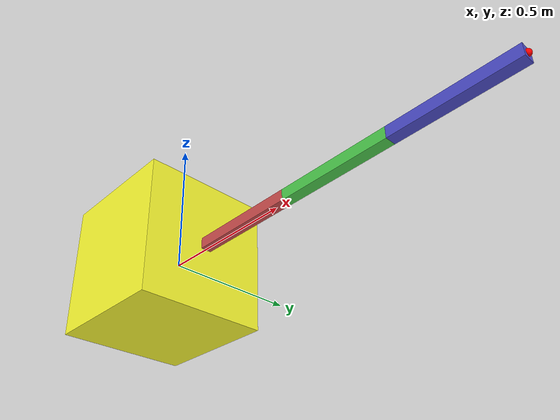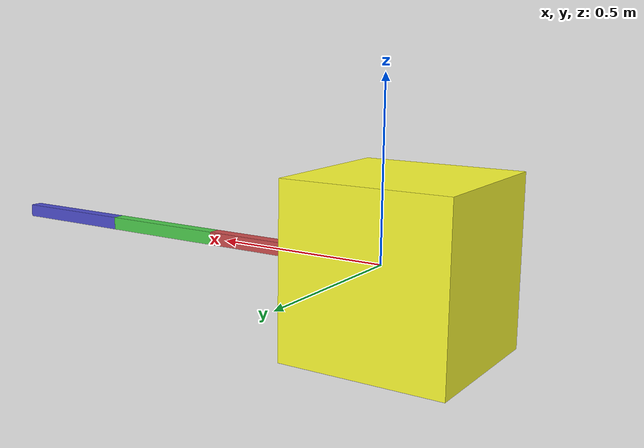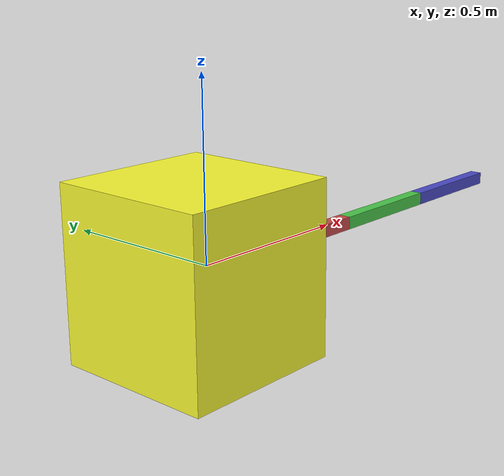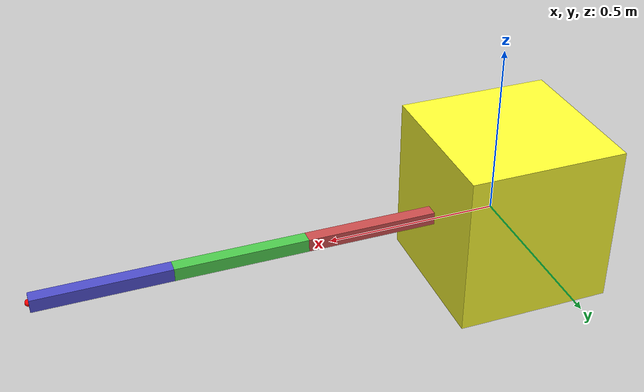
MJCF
<?xml version="1.0"?>
<mujoco model="planar_ffsms_com">
  <compiler angle="radian" inertiafromgeom="true" />
  <!-- option integrator="RK4" timestep="0.002" gravity="0 0 0" /-->
  <option timestep="0.002" gravity="0 0 0" integrator="RK4" />

  <default>
    <geom conaffinity="1" contype="1" friction="0.0 0.0 0.0" density="1000"/>
    <joint limited="false"/>
  </default>

  <worldbody>
      <!-- Large plane behind the model for background -->
    <body name="bg_plane" pos="0 0 -5">
        <geom type="plane" size="10 10 0.1" rgba="0.95 0.95 0.95 1"/>
    </body>
  <!-- Overhead directional light -->
    <light diffuse="0.1 0.1 0.1" ambient="0.1 0.1 0.1"
           pos="0 0 50" dir="0 0 -1"/>

    <!--body name="base" pos="-0.05735208 0 0"-->
    <body name="base" pos="-0.0522 -0.0193 0">
      <!-- Planar floating base joints (restrict motion to plane: tx, ty, yaw) -->
      <joint name="base_tx" type="slide" axis="1 0 0" />
      <joint name="base_ty" type="slide" axis="0 1 0" />
      <joint name="base_yaw" type="hinge" axis="0 0 1" />

      <!-- Base geometry: box sized to lb/2 in x and y half-sizes -->
      <geom name="base_geom" type="box" pos="0 0 0" size="0.232 0.232 0.2415" mass="100.015" rgba="1 1 0.2 1"/>

      <!-- Mounting point B_M_b is at +lb/2 along base x in base frame -->
      <body name="mount_point" pos="0.232 0 0">
        <!-- Joint 1: hinge about z (rotation q1) -->
        <joint name="joint1" type="hinge" axis="0 0 1" pos="0 0 0" damping="0.3" />
        <!-- Link1: capsule from joint1 origin to l1 along +x -->
        <body name="link1" pos="0 0 0">
          <geom name="link1_geom" type="box" size="0.19 0.019 0.019" pos="0.19 0 0" mass="1.2" rgba="0.8 0.3 0.3 1"/>
          <!-- joint2 located at the end of link1 (x = l1) -->
          <body name="joint2_mount" pos="0.38 0 0">
            <joint name="joint2" type="hinge" axis="0 0 1" pos="0 0 0" damping="0.3" />
            <body name="link2" pos="0 0 0">
              <geom name="link2_geom" type="box" size="0.19 0.019 0.019" pos="0.19 0 0" mass="1.2" rgba="0.3 0.8 0.3 1"/>
              <!-- joint3 located at end of link2 -->
              <body name="joint3_mount" pos="0.38 0 0">
                <joint name="joint3" type="hinge" axis="0 0 1" pos="0 0 0" damping="0.3" />
                <body name="link3" pos="0 0 0">
                  <geom name="link3_geom" type="box" size="0.19 0.019 0.019" pos="0.19 0 0" mass="0.5" rgba="0.3 0.3 0.8 1"/>
                  <site name="ee_site" pos="0.38 0 0" size="0.01" type="sphere" rgba="1 0 0 1"/>
                </body>
              </body>
            </body>
          </body>
        </body>
      </body>

    </body>
  </worldbody>

  <actuator>
    <!-- torque actuators on the manipulator joints -->
    <motor joint="joint1" gear="1"/>
    <motor joint="joint2" gear="1"/>
    <motor joint="joint3" gear="1"/>
  </actuator>

<sensor>
    <jointpos joint="joint1" name="q1"/>
    <jointpos joint="joint2" name="q2"/>
    <jointpos joint="joint3" name="q3"/>

    <jointpos joint="base_tx" name="base_x"/>
    <jointpos joint="base_ty" name="base_y"/>
    <jointpos joint="base_yaw" name="base_yaw"/>

    <!-- Correct way to get end-effector site position -->
    <framepos objtype="site" objname="ee_site" name="ee_pos"/>
</sensor>

 <keyframe>
  <key name="home" qpos="0 0 0 0 0 0"/>
  <!--key name="home" qpos="0 0 0   0.523599 0 0"/-->
  </keyframe>

</mujoco>
